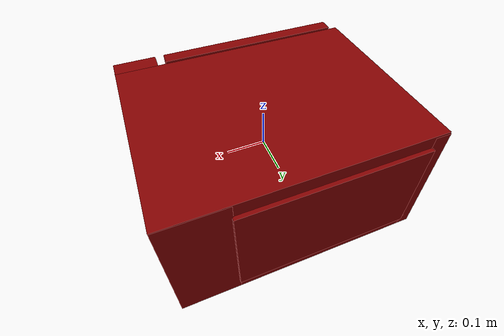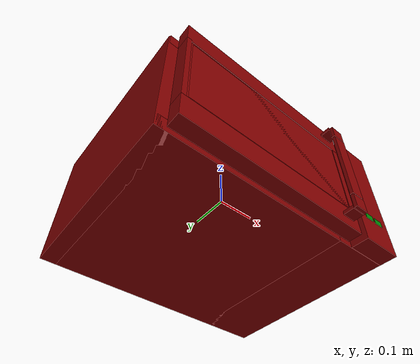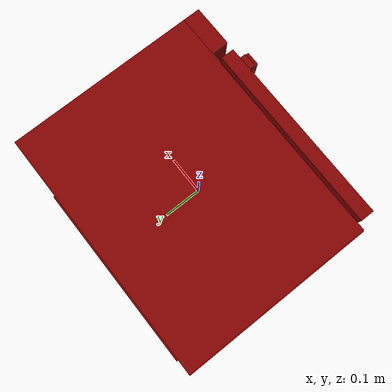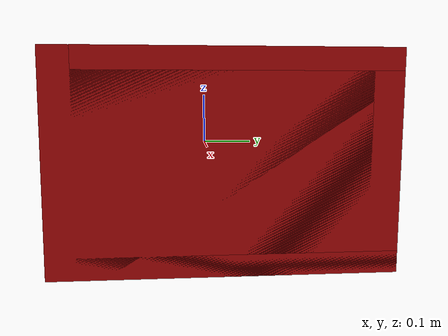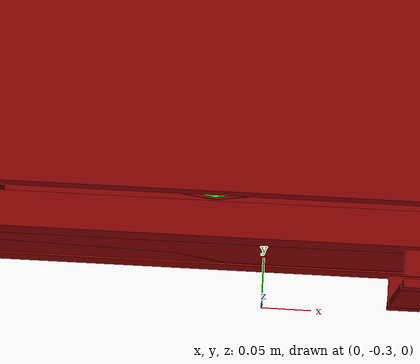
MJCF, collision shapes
<?xml version='1.0' encoding='UTF-8'?>
<mujoco model="model">
  <option timestep="0.002" gravity="0.0 0.0 -9.81"/>
  <compiler angle="radian"/>
  <asset>
    <mesh file="visuals/door.obj" name="door_vis"/>
    <mesh file="visuals/door_Clear.obj" name="door_Clear_vis"/>
    <mesh file="visuals/Body001.obj" name="Body001_vis"/>
    <mesh file="visuals/Disc001.obj" name="Disc001_vis"/>
    <texture file="visuals/T_BC001.png" name="Body001_material" type="2d"/>
    <material name="Body001_material" rgba="1 1 1 1.0" texture="Body001_material" shininess="2" specular="2"/>
    <texture file="visuals/T_BC001.png" name="door_material" type="2d"/>
    <material name="door_material" rgba="1 1 1 1.0" texture="door_material" shininess="2" specular="2"/>
    <texture file="visuals/T_BC001.png" name="door_Clear_material" type="2d"/>
    <material name="door_Clear_material" rgba="1 1 1 0.800000011920929" texture="door_Clear_material" shininess="0.2512328028678894" specular="0.3103448502657381"/>
    <texture file="visuals/T_BC001.png" name="Disc001_material" type="2d"/>
    <material name="Disc001_material" rgba="1 1 1 1.0" texture="Disc001_material" shininess="0.5" specular="0.5"/>
  </asset>
  <default>
    <default class="visual">
      <geom conaffinity="0" contype="0" group="1" type="mesh"/>
    </default>
    <default class="collision">
      <geom group="0" rgba="0.5 0 0 0.5"/>
    </default>
    <default class="spawn">
      <geom group="0" rgba="1 1 1 0.5" contype="0" conaffinity="0"/>
      <site group="0" rgba="1 1 1 0.5"/>
    </default>
    <default class="region">
      <geom group="1" conaffinity="0" contype="0" rgba="0 1 0 0"/>
    </default>
  </default>
  <worldbody>
    <body>
      <body name="object">
        <geom class="collision" type="box" pos="0.2790707051753998 -0.24947722256183624 -0.08708131313323975" size="0.013334815390408039 0.0005272438866086304 0.00787546020001173" quat="1.0 0.0 0.0 0.0" name="start_button" rgba="0.0 0.5 0 0.5"/>
        <geom class="collision" type="box" pos="0.24588453769683838 -0.24947722256183624 -0.08702235668897629" size="0.013303968124091625 0.0005240825703367591 0.007857241667807102" quat="1.0 0.0 0.0 0.0" name="stop_button" rgba="0.0 0.5 0 0.5"/>
        <geom class="collision" type="cylinder" pos="-0.05362335219979286 0.013118258677423 -0.12858068943023682" size="0.18762320280075073 0.0011352943256497383" quat="1.0 0.0 0.0 0.0" name="tray" rgba="0 1 0 0.5"/>
        <geom mesh="Body001_vis" type="mesh" solimp="0.998 0.998 0.001" solref="0.001 1" friction="0.95 0.3 0.1" class="visual" material="Body001_material"/>
        <geom class="collision" type="box" pos="-0.29689541459083557 0.03584791719913483 -0.003393055871129036" size="0.01930900290608406 0.23988713324069977 0.16559666395187378" quat="1.0 0.0 0.0 0.0"/>
        <geom class="collision" type="box" pos="0.24329356849193573 0.03584793210029602 -0.0015569869428873062" size="0.0729108601808548 0.23988713324069977 0.1674327403306961" quat="1.0 0.0 0.0 0.0"/>
        <geom class="collision" type="box" pos="0.0015947017818689346 0.03584791719913483 0.1518777459859848" size="0.3146097660064697 0.23988713324069977 0.01697155274450779" quat="1.0 0.0 0.0 0.0"/>
        <geom class="collision" type="box" pos="0.0015947017818689346 0.03584791719913483 -0.1521453559398651" size="0.3146097660064697 0.23988713324069977 0.016844341531395912" quat="1.0 0.0 0.0 0.0"/>
        <geom class="collision" type="box" pos="0.2626025676727295 -0.009210826829075813 -0.00019743666052818298" size="0.053601883351802826 0.23927120864391327 0.1687922477722168" quat="1.0 0.0 0.0 0.0"/>
        <geom class="collision" type="box" pos="-0.053313594311475754 0.2535901963710785 -0.0014113672077655792" size="0.22654157876968384 0.02994188852608204 0.13363508880138397" quat="1.0 0.0 0.0 0.0"/>
        <body name="door">
          <joint axis="0.0 0.0 1.0" pos="-0.2942858636379242 -0.22576665878295898 -0.00010680127888917923" limited="true" name="microjoint" range="-1.5707963267948966 0.0" type="hinge" damping="1" frictionloss="1" armature=".01" stiffness="0.05"/>
          <geom mesh="door_vis" type="mesh" solimp="0.998 0.998 0.001" solref="0.001 1" friction="0.95 0.3 0.1" class="visual" material="door_material"/>
          <geom class="collision" type="box" pos="-0.0567810945212841 -0.24404950439929962 4.742853343486786e-05" size="0.2224060744047165 0.0018784356070682406 0.10128500312566757" quat="1.0 0.0 0.0 0.0"/>
          <geom class="collision" type="box" pos="-0.054316382855176926 -0.2305966317653656 0.13696739077568054" size="0.2412090301513672 0.017142051830887794 0.03202231973409653" quat="1.0 0.0 0.0 0.0"/>
          <geom class="collision" type="box" pos="-0.054316382855176926 -0.2305966317653656 -0.1377476304769516" size="0.2412090301513672 0.017142051830887794 0.03124205209314823" quat="1.0 0.0 0.0 0.0"/>
          <geom class="collision" type="box" pos="0.1781141757965088 -0.2305966317653656 -0.0022490499541163445" size="0.008852015249431133 0.017142051830887794 0.11362749338150024" quat="1.0 0.0 0.0 0.0"/>
          <geom class="collision" type="box" pos="-0.28981295228004456 -0.2305966317653656 0.0024364273995161057" size="0.005712470971047878 0.017142051830887794 0.10894202440977097" quat="1.0 0.0 0.0 0.0"/>
          <geom class="collision" type="box" pos="0.15134593844413757 -0.2794056832790375 -0.12432026863098145" size="0.01749519445002079 0.00419496838003397 0.018346955999732018" quat="1.0 0.0 0.0 0.0"/>
          <geom class="collision" type="box" pos="0.151345893740654 -0.27940765023231506 0.11772698163986206" size="0.01749519631266594 0.004194969777017832 0.017633387818932533" quat="1.0 0.0 0.0 0.0"/>
          <geom class="collision" type="box" pos="0.1513458490371704 -0.258653461933136 0.1385890394449234" size="0.01749522052705288 0.014919289387762547 0.00432134885340929" quat="1.0 0.0 0.0 0.0"/>
          <geom class="collision" type="box" pos="0.1516641527414322 -0.25898176431655884 -0.1378440409898758" size="0.017244931310415268 0.015247677452862263 0.004562898073345423" quat="1.0 0.0 0.0 0.0"/>
          <geom class="collision" type="box" pos="0.15134592354297638 -0.2794056832790375 -0.003215169534087181" size="0.017495254054665565 0.004194983281195164 0.10017874836921692" quat="1.0 0.0 0.0 0.0" name="door_handle_main"/>
          <geom class="collision" type="box" pos="-0.0567810945212841 -0.24404950439929962 4.742853343486786e-05" size="0.23319274187088013 0.0018784356070682406 0.1638408601284027" quat="1.0 0.0 0.0 0.0" name="door_main"/>
          <body name="door_Clear">
            <geom mesh="door_Clear_vis" type="mesh" solimp="0.998 0.998 0.001" solref="0.001 1" friction="0.95 0.3 0.1" class="visual" material="door_Clear_material"/>
            <geom class="collision" type="box" pos="-0.0567810945212841 -0.24404950439929962 4.742853343486786e-05" size="0.2224060744047165 0.0018784356070682406 0.10128500312566757" quat="1.0 0.0 0.0 0.0"/>
          </body>
        </body>
        <body name="Disc001">
          <joint axis="0.0 0.0 1.0" pos="-0.053748659789562225 0.012733873911201954 -0.1340452879667282" limited="false" name="Disc001_joint" range="0 360" type="hinge" damping="1" frictionloss="1" armature=".01" stiffness="0.05"/>
          <geom mesh="Disc001_vis" type="mesh" solimp="0.998 0.998 0.001" solref="0.001 1" friction="0.95 0.3 0.1" class="visual" material="Disc001_material"/>
          <geom class="collision" type="cylinder" pos="-0.05357847735285759 0.012357286177575588 -0.1322849839925766" size="0.18899250030517578 0.0020256959833204746" quat="1.0 0.0 0.0 0.0"/>
        </body>
        <geom class="region" name="reg_int" type="box" pos="-0.053992919623851776 0.009311206638813019 0.001146264374256134" size="0.21883939749002457 0.20863122290372849 0.12893833762407303"/>
        <geom class="region" name="reg_main" type="box" pos="0.0 0.017525017261505127 0.0" size="0.31720442867279053 0.2670070061683655 0.16998968815803528"/>
      <geom class="region" name="reg_tray" type="cylinder" pos="-0.05362335219979286 0.013118258677423 0.0013196034468710427" size="0.18762320280075073 0.12776499855145812"/></body>
    </body>
  </worldbody>
  <actuator>
    <motor name="microjoint_actuator" joint="microjoint" gear="10"/>
    <motor name="Disc001_joint_actuator" joint="Disc001_joint" gear="10"/>
  </actuator>
</mujoco>
